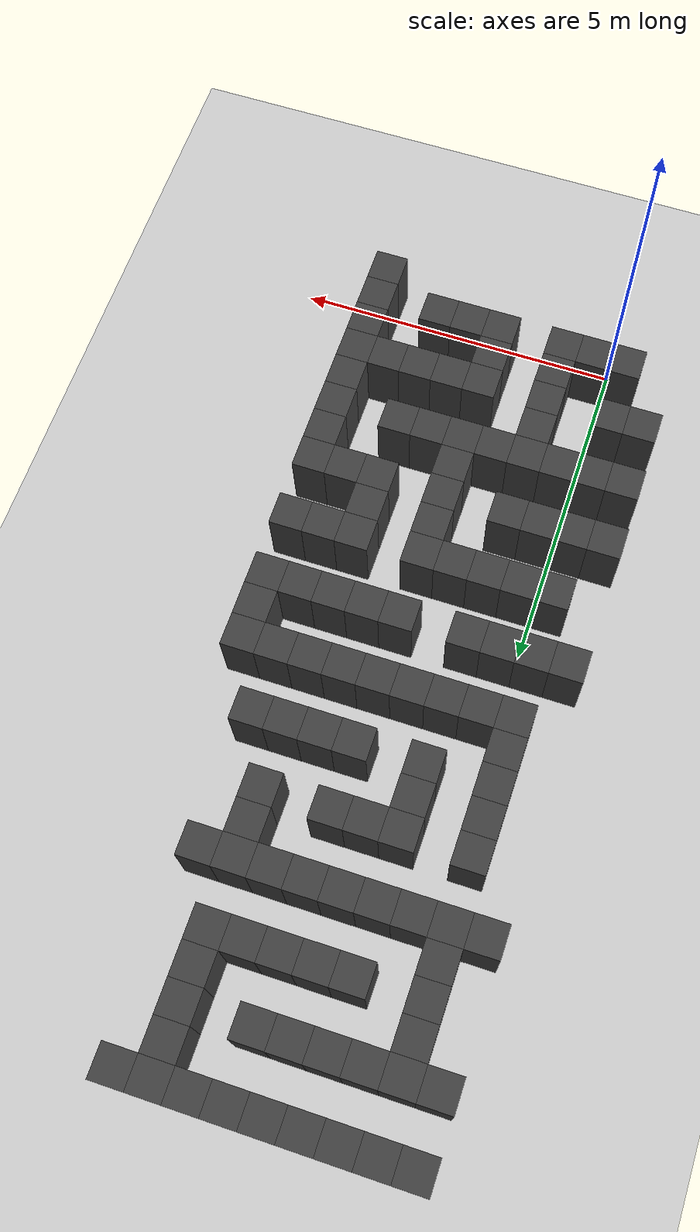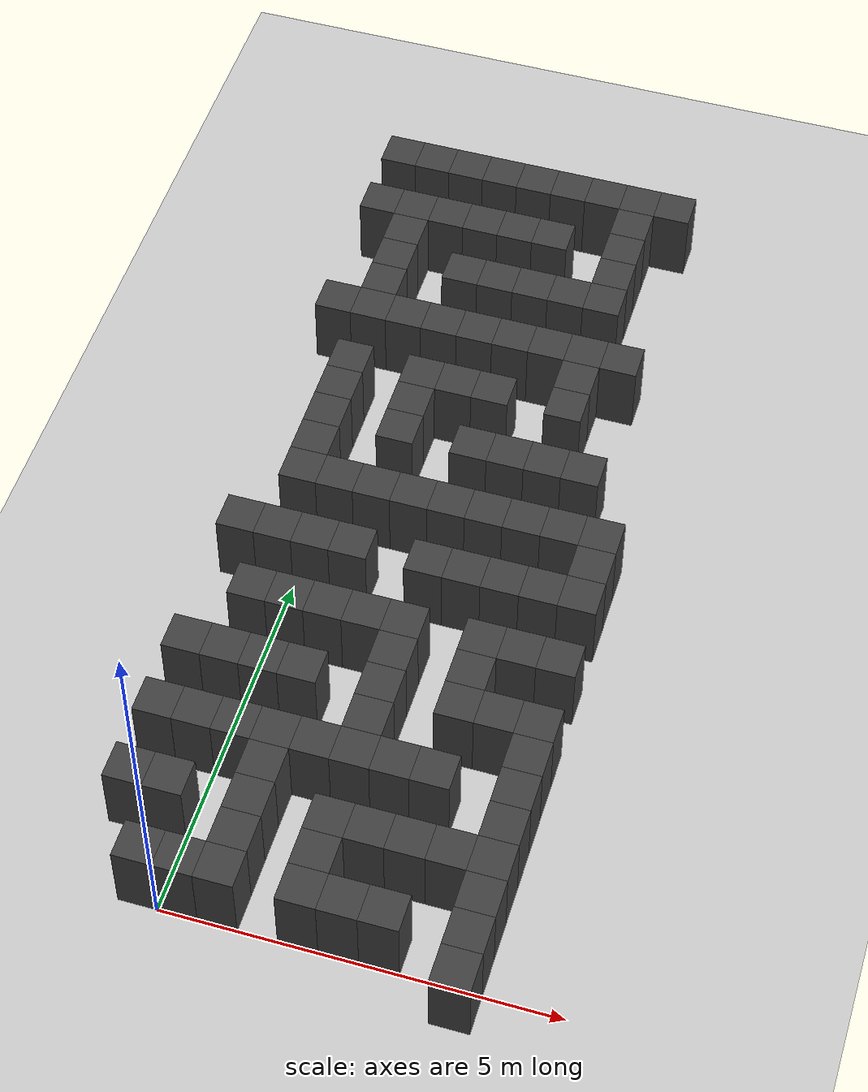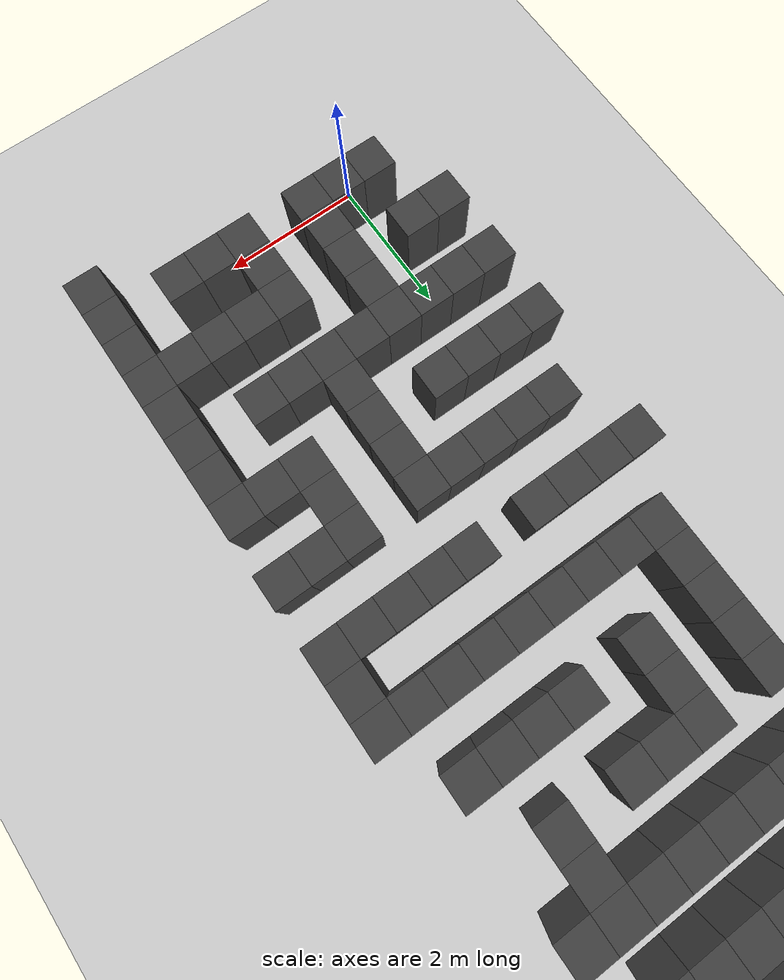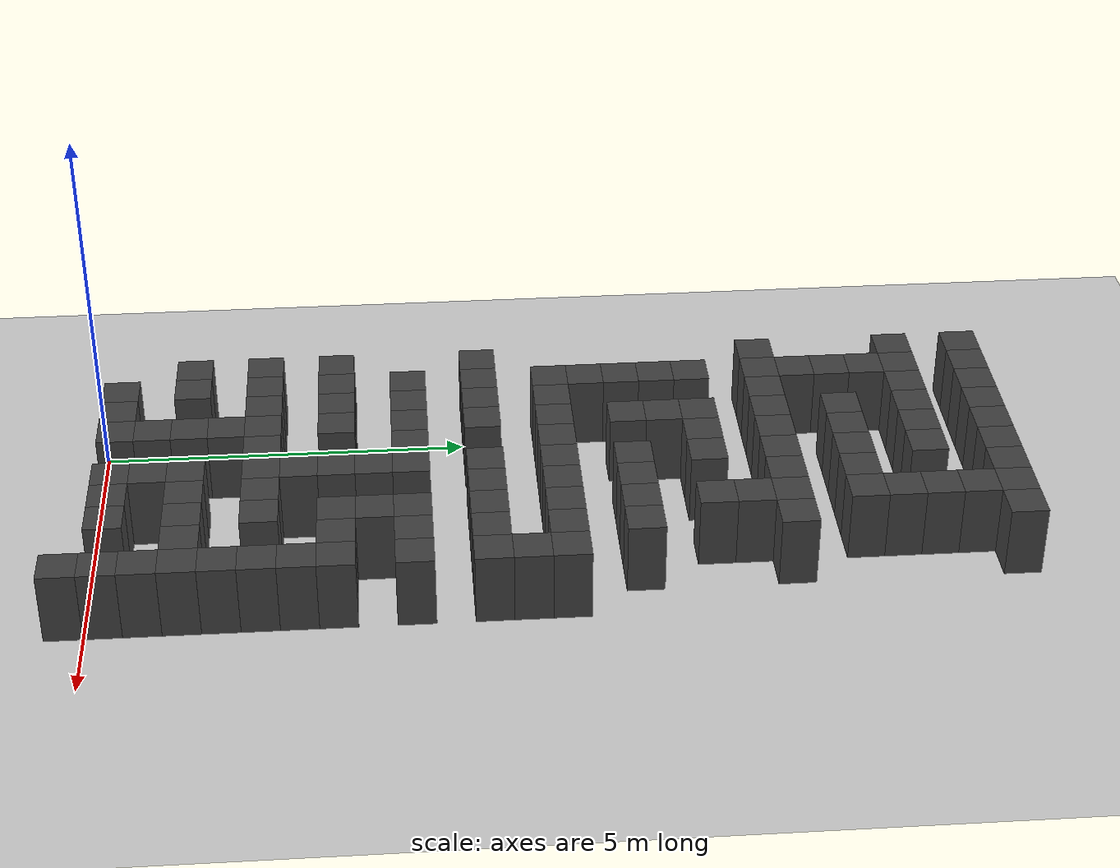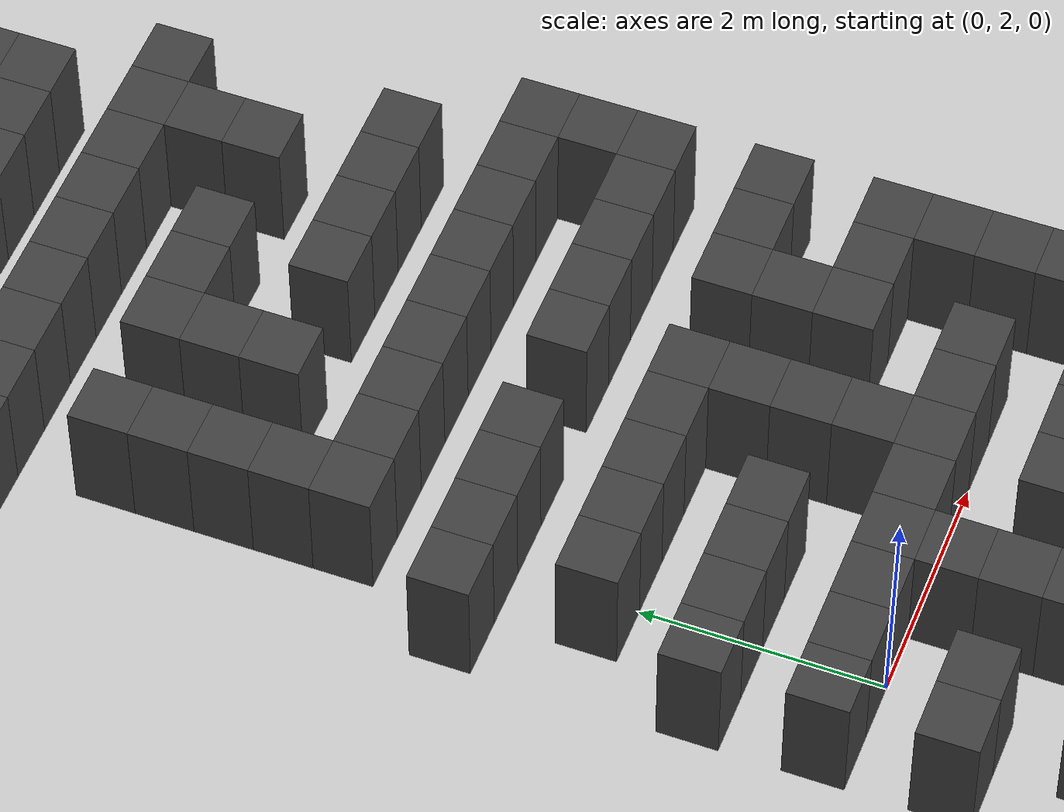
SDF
<sdf version="1.7">
 <world name="map_18596">
  <model name="ground_plane">
   <static>true</static>
   <link name="link">
    <collision name="collision">
     <geometry><plane><normal>0 0 1</normal><size>200 200</size></plane></geometry>
    </collision>
    <visual name="visual">
     <geometry><plane><normal>0 0 1</normal><size>200 200</size></plane></geometry>
     <material><ambient>0.8 0.8 0.8 1</ambient><diffuse>0.8 0.8 0.8 1</diffuse></material>
    </visual>
   </link>
  </model>
  <model name="maze_environment">
   <static>true</static>
   <link name="wall_23">
    <pose>-0.750 12.250 0.500 0 0 0</pose>
    <collision name="col"><geometry><box><size>0.5 0.5 1.0</size></box></geometry></collision>
    <visual name="vis">
     <geometry><box><size>0.5 0.5 1.0</size></box></geometry>
     <material><ambient>0.15 0.15 0.15 1</ambient><diffuse>0.25 0.25 0.25 1</diffuse></material>
    </visual>
   </link>
   <link name="wall_24">
    <pose>-0.250 12.250 0.500 0 0 0</pose>
    <collision name="col"><geometry><box><size>0.5 0.5 1.0</size></box></geometry></collision>
    <visual name="vis">
     <geometry><box><size>0.5 0.5 1.0</size></box></geometry>
     <material><ambient>0.15 0.15 0.15 1</ambient><diffuse>0.25 0.25 0.25 1</diffuse></material>
    </visual>
   </link>
   <link name="wall_25">
    <pose>0.250 12.250 0.500 0 0 0</pose>
    <collision name="col"><geometry><box><size>0.5 0.5 1.0</size></box></geometry></collision>
    <visual name="vis">
     <geometry><box><size>0.5 0.5 1.0</size></box></geometry>
     <material><ambient>0.15 0.15 0.15 1</ambient><diffuse>0.25 0.25 0.25 1</diffuse></material>
    </visual>
   </link>
   <link name="wall_26">
    <pose>0.750 12.250 0.500 0 0 0</pose>
    <collision name="col"><geometry><box><size>0.5 0.5 1.0</size></box></geometry></collision>
    <visual name="vis">
     <geometry><box><size>0.5 0.5 1.0</size></box></geometry>
     <material><ambient>0.15 0.15 0.15 1</ambient><diffuse>0.25 0.25 0.25 1</diffuse></material>
    </visual>
   </link>
   <link name="wall_27">
    <pose>1.250 12.250 0.500 0 0 0</pose>
    <collision name="col"><geometry><box><size>0.5 0.5 1.0</size></box></geometry></collision>
    <visual name="vis">
     <geometry><box><size>0.5 0.5 1.0</size></box></geometry>
     <material><ambient>0.15 0.15 0.15 1</ambient><diffuse>0.25 0.25 0.25 1</diffuse></material>
    </visual>
   </link>
   <link name="wall_28">
    <pose>1.750 12.250 0.500 0 0 0</pose>
    <collision name="col"><geometry><box><size>0.5 0.5 1.0</size></box></geometry></collision>
    <visual name="vis">
     <geometry><box><size>0.5 0.5 1.0</size></box></geometry>
     <material><ambient>0.15 0.15 0.15 1</ambient><diffuse>0.25 0.25 0.25 1</diffuse></material>
    </visual>
   </link>
   <link name="wall_29">
    <pose>2.250 12.250 0.500 0 0 0</pose>
    <collision name="col"><geometry><box><size>0.5 0.5 1.0</size></box></geometry></collision>
    <visual name="vis">
     <geometry><box><size>0.5 0.5 1.0</size></box></geometry>
     <material><ambient>0.15 0.15 0.15 1</ambient><diffuse>0.25 0.25 0.25 1</diffuse></material>
    </visual>
   </link>
   <link name="wall_30">
    <pose>2.750 12.250 0.500 0 0 0</pose>
    <collision name="col"><geometry><box><size>0.5 0.5 1.0</size></box></geometry></collision>
    <visual name="vis">
     <geometry><box><size>0.5 0.5 1.0</size></box></geometry>
     <material><ambient>0.15 0.15 0.15 1</ambient><diffuse>0.25 0.25 0.25 1</diffuse></material>
    </visual>
   </link>
   <link name="wall_31">
    <pose>3.250 12.250 0.500 0 0 0</pose>
    <collision name="col"><geometry><box><size>0.5 0.5 1.0</size></box></geometry></collision>
    <visual name="vis">
     <geometry><box><size>0.5 0.5 1.0</size></box></geometry>
     <material><ambient>0.15 0.15 0.15 1</ambient><diffuse>0.25 0.25 0.25 1</diffuse></material>
    </visual>
   </link>
   <link name="wall_55">
    <pose>2.750 11.750 0.500 0 0 0</pose>
    <collision name="col"><geometry><box><size>0.5 0.5 1.0</size></box></geometry></collision>
    <visual name="vis">
     <geometry><box><size>0.5 0.5 1.0</size></box></geometry>
     <material><ambient>0.15 0.15 0.15 1</ambient><diffuse>0.25 0.25 0.25 1</diffuse></material>
    </visual>
   </link>
   <link name="wall_73">
    <pose>-0.750 11.250 0.500 0 0 0</pose>
    <collision name="col"><geometry><box><size>0.5 0.5 1.0</size></box></geometry></collision>
    <visual name="vis">
     <geometry><box><size>0.5 0.5 1.0</size></box></geometry>
     <material><ambient>0.15 0.15 0.15 1</ambient><diffuse>0.25 0.25 0.25 1</diffuse></material>
    </visual>
   </link>
   <link name="wall_74">
    <pose>-0.250 11.250 0.500 0 0 0</pose>
    <collision name="col"><geometry><box><size>0.5 0.5 1.0</size></box></geometry></collision>
    <visual name="vis">
     <geometry><box><size>0.5 0.5 1.0</size></box></geometry>
     <material><ambient>0.15 0.15 0.15 1</ambient><diffuse>0.25 0.25 0.25 1</diffuse></material>
    </visual>
   </link>
   <link name="wall_75">
    <pose>0.250 11.250 0.500 0 0 0</pose>
    <collision name="col"><geometry><box><size>0.5 0.5 1.0</size></box></geometry></collision>
    <visual name="vis">
     <geometry><box><size>0.5 0.5 1.0</size></box></geometry>
     <material><ambient>0.15 0.15 0.15 1</ambient><diffuse>0.25 0.25 0.25 1</diffuse></material>
    </visual>
   </link>
   <link name="wall_76">
    <pose>0.750 11.250 0.500 0 0 0</pose>
    <collision name="col"><geometry><box><size>0.5 0.5 1.0</size></box></geometry></collision>
    <visual name="vis">
     <geometry><box><size>0.5 0.5 1.0</size></box></geometry>
     <material><ambient>0.15 0.15 0.15 1</ambient><diffuse>0.25 0.25 0.25 1</diffuse></material>
    </visual>
   </link>
   <link name="wall_77">
    <pose>1.250 11.250 0.500 0 0 0</pose>
    <collision name="col"><geometry><box><size>0.5 0.5 1.0</size></box></geometry></collision>
    <visual name="vis">
     <geometry><box><size>0.5 0.5 1.0</size></box></geometry>
     <material><ambient>0.15 0.15 0.15 1</ambient><diffuse>0.25 0.25 0.25 1</diffuse></material>
    </visual>
   </link>
   <link name="wall_78">
    <pose>1.750 11.250 0.500 0 0 0</pose>
    <collision name="col"><geometry><box><size>0.5 0.5 1.0</size></box></geometry></collision>
    <visual name="vis">
     <geometry><box><size>0.5 0.5 1.0</size></box></geometry>
     <material><ambient>0.15 0.15 0.15 1</ambient><diffuse>0.25 0.25 0.25 1</diffuse></material>
    </visual>
   </link>
   <link name="wall_79">
    <pose>2.750 11.250 0.500 0 0 0</pose>
    <collision name="col"><geometry><box><size>0.5 0.5 1.0</size></box></geometry></collision>
    <visual name="vis">
     <geometry><box><size>0.5 0.5 1.0</size></box></geometry>
     <material><ambient>0.15 0.15 0.15 1</ambient><diffuse>0.25 0.25 0.25 1</diffuse></material>
    </visual>
   </link>
   <link name="wall_98">
    <pose>-0.250 10.750 0.500 0 0 0</pose>
    <collision name="col"><geometry><box><size>0.5 0.5 1.0</size></box></geometry></collision>
    <visual name="vis">
     <geometry><box><size>0.5 0.5 1.0</size></box></geometry>
     <material><ambient>0.15 0.15 0.15 1</ambient><diffuse>0.25 0.25 0.25 1</diffuse></material>
    </visual>
   </link>
   <link name="wall_99">
    <pose>2.750 10.750 0.500 0 0 0</pose>
    <collision name="col"><geometry><box><size>0.5 0.5 1.0</size></box></geometry></collision>
    <visual name="vis">
     <geometry><box><size>0.5 0.5 1.0</size></box></geometry>
     <material><ambient>0.15 0.15 0.15 1</ambient><diffuse>0.25 0.25 0.25 1</diffuse></material>
    </visual>
   </link>
   <link name="wall_127">
    <pose>-0.250 10.250 0.500 0 0 0</pose>
    <collision name="col"><geometry><box><size>0.5 0.5 1.0</size></box></geometry></collision>
    <visual name="vis">
     <geometry><box><size>0.5 0.5 1.0</size></box></geometry>
     <material><ambient>0.15 0.15 0.15 1</ambient><diffuse>0.25 0.25 0.25 1</diffuse></material>
    </visual>
   </link>
   <link name="wall_128">
    <pose>0.750 10.250 0.500 0 0 0</pose>
    <collision name="col"><geometry><box><size>0.5 0.5 1.0</size></box></geometry></collision>
    <visual name="vis">
     <geometry><box><size>0.5 0.5 1.0</size></box></geometry>
     <material><ambient>0.15 0.15 0.15 1</ambient><diffuse>0.25 0.25 0.25 1</diffuse></material>
    </visual>
   </link>
   <link name="wall_129">
    <pose>1.250 10.250 0.500 0 0 0</pose>
    <collision name="col"><geometry><box><size>0.5 0.5 1.0</size></box></geometry></collision>
    <visual name="vis">
     <geometry><box><size>0.5 0.5 1.0</size></box></geometry>
     <material><ambient>0.15 0.15 0.15 1</ambient><diffuse>0.25 0.25 0.25 1</diffuse></material>
    </visual>
   </link>
   <link name="wall_130">
    <pose>1.750 10.250 0.500 0 0 0</pose>
    <collision name="col"><geometry><box><size>0.5 0.5 1.0</size></box></geometry></collision>
    <visual name="vis">
     <geometry><box><size>0.5 0.5 1.0</size></box></geometry>
     <material><ambient>0.15 0.15 0.15 1</ambient><diffuse>0.25 0.25 0.25 1</diffuse></material>
    </visual>
   </link>
   <link name="wall_131">
    <pose>2.250 10.250 0.500 0 0 0</pose>
    <collision name="col"><geometry><box><size>0.5 0.5 1.0</size></box></geometry></collision>
    <visual name="vis">
     <geometry><box><size>0.5 0.5 1.0</size></box></geometry>
     <material><ambient>0.15 0.15 0.15 1</ambient><diffuse>0.25 0.25 0.25 1</diffuse></material>
    </visual>
   </link>
   <link name="wall_132">
    <pose>2.750 10.250 0.500 0 0 0</pose>
    <collision name="col"><geometry><box><size>0.5 0.5 1.0</size></box></geometry></collision>
    <visual name="vis">
     <geometry><box><size>0.5 0.5 1.0</size></box></geometry>
     <material><ambient>0.15 0.15 0.15 1</ambient><diffuse>0.25 0.25 0.25 1</diffuse></material>
    </visual>
   </link>
   <link name="wall_150">
    <pose>-0.250 9.750 0.500 0 0 0</pose>
    <collision name="col"><geometry><box><size>0.5 0.5 1.0</size></box></geometry></collision>
    <visual name="vis">
     <geometry><box><size>0.5 0.5 1.0</size></box></geometry>
     <material><ambient>0.15 0.15 0.15 1</ambient><diffuse>0.25 0.25 0.25 1</diffuse></material>
    </visual>
   </link>
   <link name="wall_174">
    <pose>-0.750 9.250 0.500 0 0 0</pose>
    <collision name="col"><geometry><box><size>0.5 0.5 1.0</size></box></geometry></collision>
    <visual name="vis">
     <geometry><box><size>0.5 0.5 1.0</size></box></geometry>
     <material><ambient>0.15 0.15 0.15 1</ambient><diffuse>0.25 0.25 0.25 1</diffuse></material>
    </visual>
   </link>
   <link name="wall_175">
    <pose>-0.250 9.250 0.500 0 0 0</pose>
    <collision name="col"><geometry><box><size>0.5 0.5 1.0</size></box></geometry></collision>
    <visual name="vis">
     <geometry><box><size>0.5 0.5 1.0</size></box></geometry>
     <material><ambient>0.15 0.15 0.15 1</ambient><diffuse>0.25 0.25 0.25 1</diffuse></material>
    </visual>
   </link>
   <link name="wall_176">
    <pose>0.250 9.250 0.500 0 0 0</pose>
    <collision name="col"><geometry><box><size>0.5 0.5 1.0</size></box></geometry></collision>
    <visual name="vis">
     <geometry><box><size>0.5 0.5 1.0</size></box></geometry>
     <material><ambient>0.15 0.15 0.15 1</ambient><diffuse>0.25 0.25 0.25 1</diffuse></material>
    </visual>
   </link>
   <link name="wall_177">
    <pose>0.750 9.250 0.500 0 0 0</pose>
    <collision name="col"><geometry><box><size>0.5 0.5 1.0</size></box></geometry></collision>
    <visual name="vis">
     <geometry><box><size>0.5 0.5 1.0</size></box></geometry>
     <material><ambient>0.15 0.15 0.15 1</ambient><diffuse>0.25 0.25 0.25 1</diffuse></material>
    </visual>
   </link>
   <link name="wall_178">
    <pose>1.250 9.250 0.500 0 0 0</pose>
    <collision name="col"><geometry><box><size>0.5 0.5 1.0</size></box></geometry></collision>
    <visual name="vis">
     <geometry><box><size>0.5 0.5 1.0</size></box></geometry>
     <material><ambient>0.15 0.15 0.15 1</ambient><diffuse>0.25 0.25 0.25 1</diffuse></material>
    </visual>
   </link>
   <link name="wall_179">
    <pose>1.750 9.250 0.500 0 0 0</pose>
    <collision name="col"><geometry><box><size>0.5 0.5 1.0</size></box></geometry></collision>
    <visual name="vis">
     <geometry><box><size>0.5 0.5 1.0</size></box></geometry>
     <material><ambient>0.15 0.15 0.15 1</ambient><diffuse>0.25 0.25 0.25 1</diffuse></material>
    </visual>
   </link>
   <link name="wall_180">
    <pose>2.250 9.250 0.500 0 0 0</pose>
    <collision name="col"><geometry><box><size>0.5 0.5 1.0</size></box></geometry></collision>
    <visual name="vis">
     <geometry><box><size>0.5 0.5 1.0</size></box></geometry>
     <material><ambient>0.15 0.15 0.15 1</ambient><diffuse>0.25 0.25 0.25 1</diffuse></material>
    </visual>
   </link>
   <link name="wall_181">
    <pose>2.750 9.250 0.500 0 0 0</pose>
    <collision name="col"><geometry><box><size>0.5 0.5 1.0</size></box></geometry></collision>
    <visual name="vis">
     <geometry><box><size>0.5 0.5 1.0</size></box></geometry>
     <material><ambient>0.15 0.15 0.15 1</ambient><diffuse>0.25 0.25 0.25 1</diffuse></material>
    </visual>
   </link>
   <link name="wall_182">
    <pose>3.250 9.250 0.500 0 0 0</pose>
    <collision name="col"><geometry><box><size>0.5 0.5 1.0</size></box></geometry></collision>
    <visual name="vis">
     <geometry><box><size>0.5 0.5 1.0</size></box></geometry>
     <material><ambient>0.15 0.15 0.15 1</ambient><diffuse>0.25 0.25 0.25 1</diffuse></material>
    </visual>
   </link>
   <link name="wall_202">
    <pose>2.750 8.750 0.500 0 0 0</pose>
    <collision name="col"><geometry><box><size>0.5 0.5 1.0</size></box></geometry></collision>
    <visual name="vis">
     <geometry><box><size>0.5 0.5 1.0</size></box></geometry>
     <material><ambient>0.15 0.15 0.15 1</ambient><diffuse>0.25 0.25 0.25 1</diffuse></material>
    </visual>
   </link>
   <link name="wall_225">
    <pose>-0.250 8.250 0.500 0 0 0</pose>
    <collision name="col"><geometry><box><size>0.5 0.5 1.0</size></box></geometry></collision>
    <visual name="vis">
     <geometry><box><size>0.5 0.5 1.0</size></box></geometry>
     <material><ambient>0.15 0.15 0.15 1</ambient><diffuse>0.25 0.25 0.25 1</diffuse></material>
    </visual>
   </link>
   <link name="wall_226">
    <pose>0.750 8.250 0.500 0 0 0</pose>
    <collision name="col"><geometry><box><size>0.5 0.5 1.0</size></box></geometry></collision>
    <visual name="vis">
     <geometry><box><size>0.5 0.5 1.0</size></box></geometry>
     <material><ambient>0.15 0.15 0.15 1</ambient><diffuse>0.25 0.25 0.25 1</diffuse></material>
    </visual>
   </link>
   <link name="wall_227">
    <pose>1.250 8.250 0.500 0 0 0</pose>
    <collision name="col"><geometry><box><size>0.5 0.5 1.0</size></box></geometry></collision>
    <visual name="vis">
     <geometry><box><size>0.5 0.5 1.0</size></box></geometry>
     <material><ambient>0.15 0.15 0.15 1</ambient><diffuse>0.25 0.25 0.25 1</diffuse></material>
    </visual>
   </link>
   <link name="wall_228">
    <pose>1.750 8.250 0.500 0 0 0</pose>
    <collision name="col"><geometry><box><size>0.5 0.5 1.0</size></box></geometry></collision>
    <visual name="vis">
     <geometry><box><size>0.5 0.5 1.0</size></box></geometry>
     <material><ambient>0.15 0.15 0.15 1</ambient><diffuse>0.25 0.25 0.25 1</diffuse></material>
    </visual>
   </link>
   <link name="wall_229">
    <pose>2.750 8.250 0.500 0 0 0</pose>
    <collision name="col"><geometry><box><size>0.5 0.5 1.0</size></box></geometry></collision>
    <visual name="vis">
     <geometry><box><size>0.5 0.5 1.0</size></box></geometry>
     <material><ambient>0.15 0.15 0.15 1</ambient><diffuse>0.25 0.25 0.25 1</diffuse></material>
    </visual>
   </link>
   <link name="wall_253">
    <pose>-0.250 7.750 0.500 0 0 0</pose>
    <collision name="col"><geometry><box><size>0.5 0.5 1.0</size></box></geometry></collision>
    <visual name="vis">
     <geometry><box><size>0.5 0.5 1.0</size></box></geometry>
     <material><ambient>0.15 0.15 0.15 1</ambient><diffuse>0.25 0.25 0.25 1</diffuse></material>
    </visual>
   </link>
   <link name="wall_254">
    <pose>0.750 7.750 0.500 0 0 0</pose>
    <collision name="col"><geometry><box><size>0.5 0.5 1.0</size></box></geometry></collision>
    <visual name="vis">
     <geometry><box><size>0.5 0.5 1.0</size></box></geometry>
     <material><ambient>0.15 0.15 0.15 1</ambient><diffuse>0.25 0.25 0.25 1</diffuse></material>
    </visual>
   </link>
   <link name="wall_275">
    <pose>-0.250 7.250 0.500 0 0 0</pose>
    <collision name="col"><geometry><box><size>0.5 0.5 1.0</size></box></geometry></collision>
    <visual name="vis">
     <geometry><box><size>0.5 0.5 1.0</size></box></geometry>
     <material><ambient>0.15 0.15 0.15 1</ambient><diffuse>0.25 0.25 0.25 1</diffuse></material>
    </visual>
   </link>
   <link name="wall_276">
    <pose>0.750 7.250 0.500 0 0 0</pose>
    <collision name="col"><geometry><box><size>0.5 0.5 1.0</size></box></geometry></collision>
    <visual name="vis">
     <geometry><box><size>0.5 0.5 1.0</size></box></geometry>
     <material><ambient>0.15 0.15 0.15 1</ambient><diffuse>0.25 0.25 0.25 1</diffuse></material>
    </visual>
   </link>
   <link name="wall_277">
    <pose>1.750 7.250 0.500 0 0 0</pose>
    <collision name="col"><geometry><box><size>0.5 0.5 1.0</size></box></geometry></collision>
    <visual name="vis">
     <geometry><box><size>0.5 0.5 1.0</size></box></geometry>
     <material><ambient>0.15 0.15 0.15 1</ambient><diffuse>0.25 0.25 0.25 1</diffuse></material>
    </visual>
   </link>
   <link name="wall_278">
    <pose>2.250 7.250 0.500 0 0 0</pose>
    <collision name="col"><geometry><box><size>0.5 0.5 1.0</size></box></geometry></collision>
    <visual name="vis">
     <geometry><box><size>0.5 0.5 1.0</size></box></geometry>
     <material><ambient>0.15 0.15 0.15 1</ambient><diffuse>0.25 0.25 0.25 1</diffuse></material>
    </visual>
   </link>
   <link name="wall_279">
    <pose>2.750 7.250 0.500 0 0 0</pose>
    <collision name="col"><geometry><box><size>0.5 0.5 1.0</size></box></geometry></collision>
    <visual name="vis">
     <geometry><box><size>0.5 0.5 1.0</size></box></geometry>
     <material><ambient>0.15 0.15 0.15 1</ambient><diffuse>0.25 0.25 0.25 1</diffuse></material>
    </visual>
   </link>
   <link name="wall_280">
    <pose>3.250 7.250 0.500 0 0 0</pose>
    <collision name="col"><geometry><box><size>0.5 0.5 1.0</size></box></geometry></collision>
    <visual name="vis">
     <geometry><box><size>0.5 0.5 1.0</size></box></geometry>
     <material><ambient>0.15 0.15 0.15 1</ambient><diffuse>0.25 0.25 0.25 1</diffuse></material>
    </visual>
   </link>
   <link name="wall_301">
    <pose>-0.250 6.750 0.500 0 0 0</pose>
    <collision name="col"><geometry><box><size>0.5 0.5 1.0</size></box></geometry></collision>
    <visual name="vis">
     <geometry><box><size>0.5 0.5 1.0</size></box></geometry>
     <material><ambient>0.15 0.15 0.15 1</ambient><diffuse>0.25 0.25 0.25 1</diffuse></material>
    </visual>
   </link>
   <link name="wall_325">
    <pose>-0.250 6.250 0.500 0 0 0</pose>
    <collision name="col"><geometry><box><size>0.5 0.5 1.0</size></box></geometry></collision>
    <visual name="vis">
     <geometry><box><size>0.5 0.5 1.0</size></box></geometry>
     <material><ambient>0.15 0.15 0.15 1</ambient><diffuse>0.25 0.25 0.25 1</diffuse></material>
    </visual>
   </link>
   <link name="wall_326">
    <pose>0.250 6.250 0.500 0 0 0</pose>
    <collision name="col"><geometry><box><size>0.5 0.5 1.0</size></box></geometry></collision>
    <visual name="vis">
     <geometry><box><size>0.5 0.5 1.0</size></box></geometry>
     <material><ambient>0.15 0.15 0.15 1</ambient><diffuse>0.25 0.25 0.25 1</diffuse></material>
    </visual>
   </link>
   <link name="wall_327">
    <pose>0.750 6.250 0.500 0 0 0</pose>
    <collision name="col"><geometry><box><size>0.5 0.5 1.0</size></box></geometry></collision>
    <visual name="vis">
     <geometry><box><size>0.5 0.5 1.0</size></box></geometry>
     <material><ambient>0.15 0.15 0.15 1</ambient><diffuse>0.25 0.25 0.25 1</diffuse></material>
    </visual>
   </link>
   <link name="wall_328">
    <pose>1.250 6.250 0.500 0 0 0</pose>
    <collision name="col"><geometry><box><size>0.5 0.5 1.0</size></box></geometry></collision>
    <visual name="vis">
     <geometry><box><size>0.5 0.5 1.0</size></box></geometry>
     <material><ambient>0.15 0.15 0.15 1</ambient><diffuse>0.25 0.25 0.25 1</diffuse></material>
    </visual>
   </link>
   <link name="wall_329">
    <pose>1.750 6.250 0.500 0 0 0</pose>
    <collision name="col"><geometry><box><size>0.5 0.5 1.0</size></box></geometry></collision>
    <visual name="vis">
     <geometry><box><size>0.5 0.5 1.0</size></box></geometry>
     <material><ambient>0.15 0.15 0.15 1</ambient><diffuse>0.25 0.25 0.25 1</diffuse></material>
    </visual>
   </link>
   <link name="wall_330">
    <pose>2.250 6.250 0.500 0 0 0</pose>
    <collision name="col"><geometry><box><size>0.5 0.5 1.0</size></box></geometry></collision>
    <visual name="vis">
     <geometry><box><size>0.5 0.5 1.0</size></box></geometry>
     <material><ambient>0.15 0.15 0.15 1</ambient><diffuse>0.25 0.25 0.25 1</diffuse></material>
    </visual>
   </link>
   <link name="wall_331">
    <pose>2.750 6.250 0.500 0 0 0</pose>
    <collision name="col"><geometry><box><size>0.5 0.5 1.0</size></box></geometry></collision>
    <visual name="vis">
     <geometry><box><size>0.5 0.5 1.0</size></box></geometry>
     <material><ambient>0.15 0.15 0.15 1</ambient><diffuse>0.25 0.25 0.25 1</diffuse></material>
    </visual>
   </link>
   <link name="wall_332">
    <pose>3.250 6.250 0.500 0 0 0</pose>
    <collision name="col"><geometry><box><size>0.5 0.5 1.0</size></box></geometry></collision>
    <visual name="vis">
     <geometry><box><size>0.5 0.5 1.0</size></box></geometry>
     <material><ambient>0.15 0.15 0.15 1</ambient><diffuse>0.25 0.25 0.25 1</diffuse></material>
    </visual>
   </link>
   <link name="wall_333">
    <pose>3.750 6.250 0.500 0 0 0</pose>
    <collision name="col"><geometry><box><size>0.5 0.5 1.0</size></box></geometry></collision>
    <visual name="vis">
     <geometry><box><size>0.5 0.5 1.0</size></box></geometry>
     <material><ambient>0.15 0.15 0.15 1</ambient><diffuse>0.25 0.25 0.25 1</diffuse></material>
    </visual>
   </link>
   <link name="wall_347">
    <pose>3.750 5.750 0.500 0 0 0</pose>
    <collision name="col"><geometry><box><size>0.5 0.5 1.0</size></box></geometry></collision>
    <visual name="vis">
     <geometry><box><size>0.5 0.5 1.0</size></box></geometry>
     <material><ambient>0.15 0.15 0.15 1</ambient><diffuse>0.25 0.25 0.25 1</diffuse></material>
    </visual>
   </link>
   <link name="wall_374">
    <pose>-0.750 5.250 0.500 0 0 0</pose>
    <collision name="col"><geometry><box><size>0.5 0.5 1.0</size></box></geometry></collision>
    <visual name="vis">
     <geometry><box><size>0.5 0.5 1.0</size></box></geometry>
     <material><ambient>0.15 0.15 0.15 1</ambient><diffuse>0.25 0.25 0.25 1</diffuse></material>
    </visual>
   </link>
   <link name="wall_375">
    <pose>-0.250 5.250 0.500 0 0 0</pose>
    <collision name="col"><geometry><box><size>0.5 0.5 1.0</size></box></geometry></collision>
    <visual name="vis">
     <geometry><box><size>0.5 0.5 1.0</size></box></geometry>
     <material><ambient>0.15 0.15 0.15 1</ambient><diffuse>0.25 0.25 0.25 1</diffuse></material>
    </visual>
   </link>
   <link name="wall_376">
    <pose>0.250 5.250 0.500 0 0 0</pose>
    <collision name="col"><geometry><box><size>0.5 0.5 1.0</size></box></geometry></collision>
    <visual name="vis">
     <geometry><box><size>0.5 0.5 1.0</size></box></geometry>
     <material><ambient>0.15 0.15 0.15 1</ambient><diffuse>0.25 0.25 0.25 1</diffuse></material>
    </visual>
   </link>
   <link name="wall_377">
    <pose>0.750 5.250 0.500 0 0 0</pose>
    <collision name="col"><geometry><box><size>0.5 0.5 1.0</size></box></geometry></collision>
    <visual name="vis">
     <geometry><box><size>0.5 0.5 1.0</size></box></geometry>
     <material><ambient>0.15 0.15 0.15 1</ambient><diffuse>0.25 0.25 0.25 1</diffuse></material>
    </visual>
   </link>
   <link name="wall_378">
    <pose>1.750 5.250 0.500 0 0 0</pose>
    <collision name="col"><geometry><box><size>0.5 0.5 1.0</size></box></geometry></collision>
    <visual name="vis">
     <geometry><box><size>0.5 0.5 1.0</size></box></geometry>
     <material><ambient>0.15 0.15 0.15 1</ambient><diffuse>0.25 0.25 0.25 1</diffuse></material>
    </visual>
   </link>
   <link name="wall_379">
    <pose>2.250 5.250 0.500 0 0 0</pose>
    <collision name="col"><geometry><box><size>0.5 0.5 1.0</size></box></geometry></collision>
    <visual name="vis">
     <geometry><box><size>0.5 0.5 1.0</size></box></geometry>
     <material><ambient>0.15 0.15 0.15 1</ambient><diffuse>0.25 0.25 0.25 1</diffuse></material>
    </visual>
   </link>
   <link name="wall_380">
    <pose>2.750 5.250 0.500 0 0 0</pose>
    <collision name="col"><geometry><box><size>0.5 0.5 1.0</size></box></geometry></collision>
    <visual name="vis">
     <geometry><box><size>0.5 0.5 1.0</size></box></geometry>
     <material><ambient>0.15 0.15 0.15 1</ambient><diffuse>0.25 0.25 0.25 1</diffuse></material>
    </visual>
   </link>
   <link name="wall_381">
    <pose>3.250 5.250 0.500 0 0 0</pose>
    <collision name="col"><geometry><box><size>0.5 0.5 1.0</size></box></geometry></collision>
    <visual name="vis">
     <geometry><box><size>0.5 0.5 1.0</size></box></geometry>
     <material><ambient>0.15 0.15 0.15 1</ambient><diffuse>0.25 0.25 0.25 1</diffuse></material>
    </visual>
   </link>
   <link name="wall_382">
    <pose>3.750 5.250 0.500 0 0 0</pose>
    <collision name="col"><geometry><box><size>0.5 0.5 1.0</size></box></geometry></collision>
    <visual name="vis">
     <geometry><box><size>0.5 0.5 1.0</size></box></geometry>
     <material><ambient>0.15 0.15 0.15 1</ambient><diffuse>0.25 0.25 0.25 1</diffuse></material>
    </visual>
   </link>
   <link name="wall_426">
    <pose>-0.250 4.250 0.500 0 0 0</pose>
    <collision name="col"><geometry><box><size>0.5 0.5 1.0</size></box></geometry></collision>
    <visual name="vis">
     <geometry><box><size>0.5 0.5 1.0</size></box></geometry>
     <material><ambient>0.15 0.15 0.15 1</ambient><diffuse>0.25 0.25 0.25 1</diffuse></material>
    </visual>
   </link>
   <link name="wall_427">
    <pose>0.250 4.250 0.500 0 0 0</pose>
    <collision name="col"><geometry><box><size>0.5 0.5 1.0</size></box></geometry></collision>
    <visual name="vis">
     <geometry><box><size>0.5 0.5 1.0</size></box></geometry>
     <material><ambient>0.15 0.15 0.15 1</ambient><diffuse>0.25 0.25 0.25 1</diffuse></material>
    </visual>
   </link>
   <link name="wall_428">
    <pose>0.750 4.250 0.500 0 0 0</pose>
    <collision name="col"><geometry><box><size>0.5 0.5 1.0</size></box></geometry></collision>
    <visual name="vis">
     <geometry><box><size>0.5 0.5 1.0</size></box></geometry>
     <material><ambient>0.15 0.15 0.15 1</ambient><diffuse>0.25 0.25 0.25 1</diffuse></material>
    </visual>
   </link>
   <link name="wall_429">
    <pose>1.250 4.250 0.500 0 0 0</pose>
    <collision name="col"><geometry><box><size>0.5 0.5 1.0</size></box></geometry></collision>
    <visual name="vis">
     <geometry><box><size>0.5 0.5 1.0</size></box></geometry>
     <material><ambient>0.15 0.15 0.15 1</ambient><diffuse>0.25 0.25 0.25 1</diffuse></material>
    </visual>
   </link>
   <link name="wall_430">
    <pose>1.750 4.250 0.500 0 0 0</pose>
    <collision name="col"><geometry><box><size>0.5 0.5 1.0</size></box></geometry></collision>
    <visual name="vis">
     <geometry><box><size>0.5 0.5 1.0</size></box></geometry>
     <material><ambient>0.15 0.15 0.15 1</ambient><diffuse>0.25 0.25 0.25 1</diffuse></material>
    </visual>
   </link>
   <link name="wall_431">
    <pose>2.750 4.250 0.500 0 0 0</pose>
    <collision name="col"><geometry><box><size>0.5 0.5 1.0</size></box></geometry></collision>
    <visual name="vis">
     <geometry><box><size>0.5 0.5 1.0</size></box></geometry>
     <material><ambient>0.15 0.15 0.15 1</ambient><diffuse>0.25 0.25 0.25 1</diffuse></material>
    </visual>
   </link>
   <link name="wall_432">
    <pose>3.250 4.250 0.500 0 0 0</pose>
    <collision name="col"><geometry><box><size>0.5 0.5 1.0</size></box></geometry></collision>
    <visual name="vis">
     <geometry><box><size>0.5 0.5 1.0</size></box></geometry>
     <material><ambient>0.15 0.15 0.15 1</ambient><diffuse>0.25 0.25 0.25 1</diffuse></material>
    </visual>
   </link>
   <link name="wall_433">
    <pose>3.750 4.250 0.500 0 0 0</pose>
    <collision name="col"><geometry><box><size>0.5 0.5 1.0</size></box></geometry></collision>
    <visual name="vis">
     <geometry><box><size>0.5 0.5 1.0</size></box></geometry>
     <material><ambient>0.15 0.15 0.15 1</ambient><diffuse>0.25 0.25 0.25 1</diffuse></material>
    </visual>
   </link>
   <link name="wall_450">
    <pose>1.750 3.750 0.500 0 0 0</pose>
    <collision name="col"><geometry><box><size>0.5 0.5 1.0</size></box></geometry></collision>
    <visual name="vis">
     <geometry><box><size>0.5 0.5 1.0</size></box></geometry>
     <material><ambient>0.15 0.15 0.15 1</ambient><diffuse>0.25 0.25 0.25 1</diffuse></material>
    </visual>
   </link>
   <link name="wall_451">
    <pose>2.750 3.750 0.500 0 0 0</pose>
    <collision name="col"><geometry><box><size>0.5 0.5 1.0</size></box></geometry></collision>
    <visual name="vis">
     <geometry><box><size>0.5 0.5 1.0</size></box></geometry>
     <material><ambient>0.15 0.15 0.15 1</ambient><diffuse>0.25 0.25 0.25 1</diffuse></material>
    </visual>
   </link>
   <link name="wall_475">
    <pose>-0.750 3.250 0.500 0 0 0</pose>
    <collision name="col"><geometry><box><size>0.5 0.5 1.0</size></box></geometry></collision>
    <visual name="vis">
     <geometry><box><size>0.5 0.5 1.0</size></box></geometry>
     <material><ambient>0.15 0.15 0.15 1</ambient><diffuse>0.25 0.25 0.25 1</diffuse></material>
    </visual>
   </link>
   <link name="wall_476">
    <pose>-0.250 3.250 0.500 0 0 0</pose>
    <collision name="col"><geometry><box><size>0.5 0.5 1.0</size></box></geometry></collision>
    <visual name="vis">
     <geometry><box><size>0.5 0.5 1.0</size></box></geometry>
     <material><ambient>0.15 0.15 0.15 1</ambient><diffuse>0.25 0.25 0.25 1</diffuse></material>
    </visual>
   </link>
   <link name="wall_477">
    <pose>0.250 3.250 0.500 0 0 0</pose>
    <collision name="col"><geometry><box><size>0.5 0.5 1.0</size></box></geometry></collision>
    <visual name="vis">
     <geometry><box><size>0.5 0.5 1.0</size></box></geometry>
     <material><ambient>0.15 0.15 0.15 1</ambient><diffuse>0.25 0.25 0.25 1</diffuse></material>
    </visual>
   </link>
   <link name="wall_478">
    <pose>0.750 3.250 0.500 0 0 0</pose>
    <collision name="col"><geometry><box><size>0.5 0.5 1.0</size></box></geometry></collision>
    <visual name="vis">
     <geometry><box><size>0.5 0.5 1.0</size></box></geometry>
     <material><ambient>0.15 0.15 0.15 1</ambient><diffuse>0.25 0.25 0.25 1</diffuse></material>
    </visual>
   </link>
   <link name="wall_479">
    <pose>1.750 3.250 0.500 0 0 0</pose>
    <collision name="col"><geometry><box><size>0.5 0.5 1.0</size></box></geometry></collision>
    <visual name="vis">
     <geometry><box><size>0.5 0.5 1.0</size></box></geometry>
     <material><ambient>0.15 0.15 0.15 1</ambient><diffuse>0.25 0.25 0.25 1</diffuse></material>
    </visual>
   </link>
   <link name="wall_480">
    <pose>2.750 3.250 0.500 0 0 0</pose>
    <collision name="col"><geometry><box><size>0.5 0.5 1.0</size></box></geometry></collision>
    <visual name="vis">
     <geometry><box><size>0.5 0.5 1.0</size></box></geometry>
     <material><ambient>0.15 0.15 0.15 1</ambient><diffuse>0.25 0.25 0.25 1</diffuse></material>
    </visual>
   </link>
   <link name="wall_481">
    <pose>3.250 3.250 0.500 0 0 0</pose>
    <collision name="col"><geometry><box><size>0.5 0.5 1.0</size></box></geometry></collision>
    <visual name="vis">
     <geometry><box><size>0.5 0.5 1.0</size></box></geometry>
     <material><ambient>0.15 0.15 0.15 1</ambient><diffuse>0.25 0.25 0.25 1</diffuse></material>
    </visual>
   </link>
   <link name="wall_482">
    <pose>3.750 3.250 0.500 0 0 0</pose>
    <collision name="col"><geometry><box><size>0.5 0.5 1.0</size></box></geometry></collision>
    <visual name="vis">
     <geometry><box><size>0.5 0.5 1.0</size></box></geometry>
     <material><ambient>0.15 0.15 0.15 1</ambient><diffuse>0.25 0.25 0.25 1</diffuse></material>
    </visual>
   </link>
   <link name="wall_500">
    <pose>1.750 2.750 0.500 0 0 0</pose>
    <collision name="col"><geometry><box><size>0.5 0.5 1.0</size></box></geometry></collision>
    <visual name="vis">
     <geometry><box><size>0.5 0.5 1.0</size></box></geometry>
     <material><ambient>0.15 0.15 0.15 1</ambient><diffuse>0.25 0.25 0.25 1</diffuse></material>
    </visual>
   </link>
   <link name="wall_501">
    <pose>3.750 2.750 0.500 0 0 0</pose>
    <collision name="col"><geometry><box><size>0.5 0.5 1.0</size></box></geometry></collision>
    <visual name="vis">
     <geometry><box><size>0.5 0.5 1.0</size></box></geometry>
     <material><ambient>0.15 0.15 0.15 1</ambient><diffuse>0.25 0.25 0.25 1</diffuse></material>
    </visual>
   </link>
   <link name="wall_525">
    <pose>-0.750 2.250 0.500 0 0 0</pose>
    <collision name="col"><geometry><box><size>0.5 0.5 1.0</size></box></geometry></collision>
    <visual name="vis">
     <geometry><box><size>0.5 0.5 1.0</size></box></geometry>
     <material><ambient>0.15 0.15 0.15 1</ambient><diffuse>0.25 0.25 0.25 1</diffuse></material>
    </visual>
   </link>
   <link name="wall_526">
    <pose>-0.250 2.250 0.500 0 0 0</pose>
    <collision name="col"><geometry><box><size>0.5 0.5 1.0</size></box></geometry></collision>
    <visual name="vis">
     <geometry><box><size>0.5 0.5 1.0</size></box></geometry>
     <material><ambient>0.15 0.15 0.15 1</ambient><diffuse>0.25 0.25 0.25 1</diffuse></material>
    </visual>
   </link>
   <link name="wall_527">
    <pose>0.250 2.250 0.500 0 0 0</pose>
    <collision name="col"><geometry><box><size>0.5 0.5 1.0</size></box></geometry></collision>
    <visual name="vis">
     <geometry><box><size>0.5 0.5 1.0</size></box></geometry>
     <material><ambient>0.15 0.15 0.15 1</ambient><diffuse>0.25 0.25 0.25 1</diffuse></material>
    </visual>
   </link>
   <link name="wall_528">
    <pose>0.750 2.250 0.500 0 0 0</pose>
    <collision name="col"><geometry><box><size>0.5 0.5 1.0</size></box></geometry></collision>
    <visual name="vis">
     <geometry><box><size>0.5 0.5 1.0</size></box></geometry>
     <material><ambient>0.15 0.15 0.15 1</ambient><diffuse>0.25 0.25 0.25 1</diffuse></material>
    </visual>
   </link>
   <link name="wall_529">
    <pose>1.250 2.250 0.500 0 0 0</pose>
    <collision name="col"><geometry><box><size>0.5 0.5 1.0</size></box></geometry></collision>
    <visual name="vis">
     <geometry><box><size>0.5 0.5 1.0</size></box></geometry>
     <material><ambient>0.15 0.15 0.15 1</ambient><diffuse>0.25 0.25 0.25 1</diffuse></material>
    </visual>
   </link>
   <link name="wall_530">
    <pose>1.750 2.250 0.500 0 0 0</pose>
    <collision name="col"><geometry><box><size>0.5 0.5 1.0</size></box></geometry></collision>
    <visual name="vis">
     <geometry><box><size>0.5 0.5 1.0</size></box></geometry>
     <material><ambient>0.15 0.15 0.15 1</ambient><diffuse>0.25 0.25 0.25 1</diffuse></material>
    </visual>
   </link>
   <link name="wall_531">
    <pose>2.250 2.250 0.500 0 0 0</pose>
    <collision name="col"><geometry><box><size>0.5 0.5 1.0</size></box></geometry></collision>
    <visual name="vis">
     <geometry><box><size>0.5 0.5 1.0</size></box></geometry>
     <material><ambient>0.15 0.15 0.15 1</ambient><diffuse>0.25 0.25 0.25 1</diffuse></material>
    </visual>
   </link>
   <link name="wall_532">
    <pose>2.750 2.250 0.500 0 0 0</pose>
    <collision name="col"><geometry><box><size>0.5 0.5 1.0</size></box></geometry></collision>
    <visual name="vis">
     <geometry><box><size>0.5 0.5 1.0</size></box></geometry>
     <material><ambient>0.15 0.15 0.15 1</ambient><diffuse>0.25 0.25 0.25 1</diffuse></material>
    </visual>
   </link>
   <link name="wall_533">
    <pose>3.750 2.250 0.500 0 0 0</pose>
    <collision name="col"><geometry><box><size>0.5 0.5 1.0</size></box></geometry></collision>
    <visual name="vis">
     <geometry><box><size>0.5 0.5 1.0</size></box></geometry>
     <material><ambient>0.15 0.15 0.15 1</ambient><diffuse>0.25 0.25 0.25 1</diffuse></material>
    </visual>
   </link>
   <link name="wall_550">
    <pose>0.750 1.750 0.500 0 0 0</pose>
    <collision name="col"><geometry><box><size>0.5 0.5 1.0</size></box></geometry></collision>
    <visual name="vis">
     <geometry><box><size>0.5 0.5 1.0</size></box></geometry>
     <material><ambient>0.15 0.15 0.15 1</ambient><diffuse>0.25 0.25 0.25 1</diffuse></material>
    </visual>
   </link>
   <link name="wall_551">
    <pose>3.750 1.750 0.500 0 0 0</pose>
    <collision name="col"><geometry><box><size>0.5 0.5 1.0</size></box></geometry></collision>
    <visual name="vis">
     <geometry><box><size>0.5 0.5 1.0</size></box></geometry>
     <material><ambient>0.15 0.15 0.15 1</ambient><diffuse>0.25 0.25 0.25 1</diffuse></material>
    </visual>
   </link>
   <link name="wall_577">
    <pose>-0.750 1.250 0.500 0 0 0</pose>
    <collision name="col"><geometry><box><size>0.5 0.5 1.0</size></box></geometry></collision>
    <visual name="vis">
     <geometry><box><size>0.5 0.5 1.0</size></box></geometry>
     <material><ambient>0.15 0.15 0.15 1</ambient><diffuse>0.25 0.25 0.25 1</diffuse></material>
    </visual>
   </link>
   <link name="wall_578">
    <pose>-0.250 1.250 0.500 0 0 0</pose>
    <collision name="col"><geometry><box><size>0.5 0.5 1.0</size></box></geometry></collision>
    <visual name="vis">
     <geometry><box><size>0.5 0.5 1.0</size></box></geometry>
     <material><ambient>0.15 0.15 0.15 1</ambient><diffuse>0.25 0.25 0.25 1</diffuse></material>
    </visual>
   </link>
   <link name="wall_579">
    <pose>0.750 1.250 0.500 0 0 0</pose>
    <collision name="col"><geometry><box><size>0.5 0.5 1.0</size></box></geometry></collision>
    <visual name="vis">
     <geometry><box><size>0.5 0.5 1.0</size></box></geometry>
     <material><ambient>0.15 0.15 0.15 1</ambient><diffuse>0.25 0.25 0.25 1</diffuse></material>
    </visual>
   </link>
   <link name="wall_580">
    <pose>1.750 1.250 0.500 0 0 0</pose>
    <collision name="col"><geometry><box><size>0.5 0.5 1.0</size></box></geometry></collision>
    <visual name="vis">
     <geometry><box><size>0.5 0.5 1.0</size></box></geometry>
     <material><ambient>0.15 0.15 0.15 1</ambient><diffuse>0.25 0.25 0.25 1</diffuse></material>
    </visual>
   </link>
   <link name="wall_581">
    <pose>2.250 1.250 0.500 0 0 0</pose>
    <collision name="col"><geometry><box><size>0.5 0.5 1.0</size></box></geometry></collision>
    <visual name="vis">
     <geometry><box><size>0.5 0.5 1.0</size></box></geometry>
     <material><ambient>0.15 0.15 0.15 1</ambient><diffuse>0.25 0.25 0.25 1</diffuse></material>
    </visual>
   </link>
   <link name="wall_582">
    <pose>2.750 1.250 0.500 0 0 0</pose>
    <collision name="col"><geometry><box><size>0.5 0.5 1.0</size></box></geometry></collision>
    <visual name="vis">
     <geometry><box><size>0.5 0.5 1.0</size></box></geometry>
     <material><ambient>0.15 0.15 0.15 1</ambient><diffuse>0.25 0.25 0.25 1</diffuse></material>
    </visual>
   </link>
   <link name="wall_583">
    <pose>3.250 1.250 0.500 0 0 0</pose>
    <collision name="col"><geometry><box><size>0.5 0.5 1.0</size></box></geometry></collision>
    <visual name="vis">
     <geometry><box><size>0.5 0.5 1.0</size></box></geometry>
     <material><ambient>0.15 0.15 0.15 1</ambient><diffuse>0.25 0.25 0.25 1</diffuse></material>
    </visual>
   </link>
   <link name="wall_584">
    <pose>3.750 1.250 0.500 0 0 0</pose>
    <collision name="col"><geometry><box><size>0.5 0.5 1.0</size></box></geometry></collision>
    <visual name="vis">
     <geometry><box><size>0.5 0.5 1.0</size></box></geometry>
     <material><ambient>0.15 0.15 0.15 1</ambient><diffuse>0.25 0.25 0.25 1</diffuse></material>
    </visual>
   </link>
   <link name="wall_603">
    <pose>0.750 0.750 0.500 0 0 0</pose>
    <collision name="col"><geometry><box><size>0.5 0.5 1.0</size></box></geometry></collision>
    <visual name="vis">
     <geometry><box><size>0.5 0.5 1.0</size></box></geometry>
     <material><ambient>0.15 0.15 0.15 1</ambient><diffuse>0.25 0.25 0.25 1</diffuse></material>
    </visual>
   </link>
   <link name="wall_604">
    <pose>1.750 0.750 0.500 0 0 0</pose>
    <collision name="col"><geometry><box><size>0.5 0.5 1.0</size></box></geometry></collision>
    <visual name="vis">
     <geometry><box><size>0.5 0.5 1.0</size></box></geometry>
     <material><ambient>0.15 0.15 0.15 1</ambient><diffuse>0.25 0.25 0.25 1</diffuse></material>
    </visual>
   </link>
   <link name="wall_605">
    <pose>3.750 0.750 0.500 0 0 0</pose>
    <collision name="col"><geometry><box><size>0.5 0.5 1.0</size></box></geometry></collision>
    <visual name="vis">
     <geometry><box><size>0.5 0.5 1.0</size></box></geometry>
     <material><ambient>0.15 0.15 0.15 1</ambient><diffuse>0.25 0.25 0.25 1</diffuse></material>
    </visual>
   </link>
   <link name="wall_629">
    <pose>-0.250 0.250 0.500 0 0 0</pose>
    <collision name="col"><geometry><box><size>0.5 0.5 1.0</size></box></geometry></collision>
    <visual name="vis">
     <geometry><box><size>0.5 0.5 1.0</size></box></geometry>
     <material><ambient>0.15 0.15 0.15 1</ambient><diffuse>0.25 0.25 0.25 1</diffuse></material>
    </visual>
   </link>
   <link name="wall_630">
    <pose>0.250 0.250 0.500 0 0 0</pose>
    <collision name="col"><geometry><box><size>0.5 0.5 1.0</size></box></geometry></collision>
    <visual name="vis">
     <geometry><box><size>0.5 0.5 1.0</size></box></geometry>
     <material><ambient>0.15 0.15 0.15 1</ambient><diffuse>0.25 0.25 0.25 1</diffuse></material>
    </visual>
   </link>
   <link name="wall_631">
    <pose>0.750 0.250 0.500 0 0 0</pose>
    <collision name="col"><geometry><box><size>0.5 0.5 1.0</size></box></geometry></collision>
    <visual name="vis">
     <geometry><box><size>0.5 0.5 1.0</size></box></geometry>
     <material><ambient>0.15 0.15 0.15 1</ambient><diffuse>0.25 0.25 0.25 1</diffuse></material>
    </visual>
   </link>
   <link name="wall_632">
    <pose>1.750 0.250 0.500 0 0 0</pose>
    <collision name="col"><geometry><box><size>0.5 0.5 1.0</size></box></geometry></collision>
    <visual name="vis">
     <geometry><box><size>0.5 0.5 1.0</size></box></geometry>
     <material><ambient>0.15 0.15 0.15 1</ambient><diffuse>0.25 0.25 0.25 1</diffuse></material>
    </visual>
   </link>
   <link name="wall_633">
    <pose>2.250 0.250 0.500 0 0 0</pose>
    <collision name="col"><geometry><box><size>0.5 0.5 1.0</size></box></geometry></collision>
    <visual name="vis">
     <geometry><box><size>0.5 0.5 1.0</size></box></geometry>
     <material><ambient>0.15 0.15 0.15 1</ambient><diffuse>0.25 0.25 0.25 1</diffuse></material>
    </visual>
   </link>
   <link name="wall_634">
    <pose>2.750 0.250 0.500 0 0 0</pose>
    <collision name="col"><geometry><box><size>0.5 0.5 1.0</size></box></geometry></collision>
    <visual name="vis">
     <geometry><box><size>0.5 0.5 1.0</size></box></geometry>
     <material><ambient>0.15 0.15 0.15 1</ambient><diffuse>0.25 0.25 0.25 1</diffuse></material>
    </visual>
   </link>
   <link name="wall_635">
    <pose>3.750 0.250 0.500 0 0 0</pose>
    <collision name="col"><geometry><box><size>0.5 0.5 1.0</size></box></geometry></collision>
    <visual name="vis">
     <geometry><box><size>0.5 0.5 1.0</size></box></geometry>
     <material><ambient>0.15 0.15 0.15 1</ambient><diffuse>0.25 0.25 0.25 1</diffuse></material>
    </visual>
   </link>
   <link name="wall_657">
    <pose>3.750 -0.250 0.500 0 0 0</pose>
    <collision name="col"><geometry><box><size>0.5 0.5 1.0</size></box></geometry></collision>
    <visual name="vis">
     <geometry><box><size>0.5 0.5 1.0</size></box></geometry>
     <material><ambient>0.15 0.15 0.15 1</ambient><diffuse>0.25 0.25 0.25 1</diffuse></material>
    </visual>
   </link>
  </model>
 </world>
</sdf>
